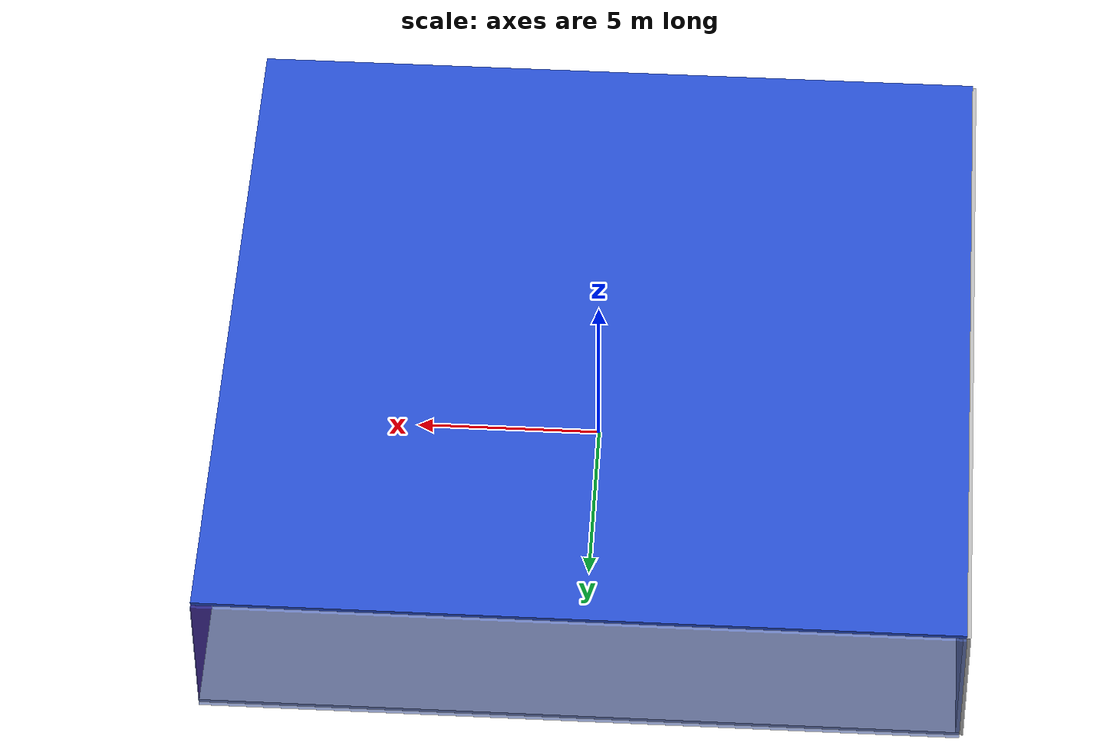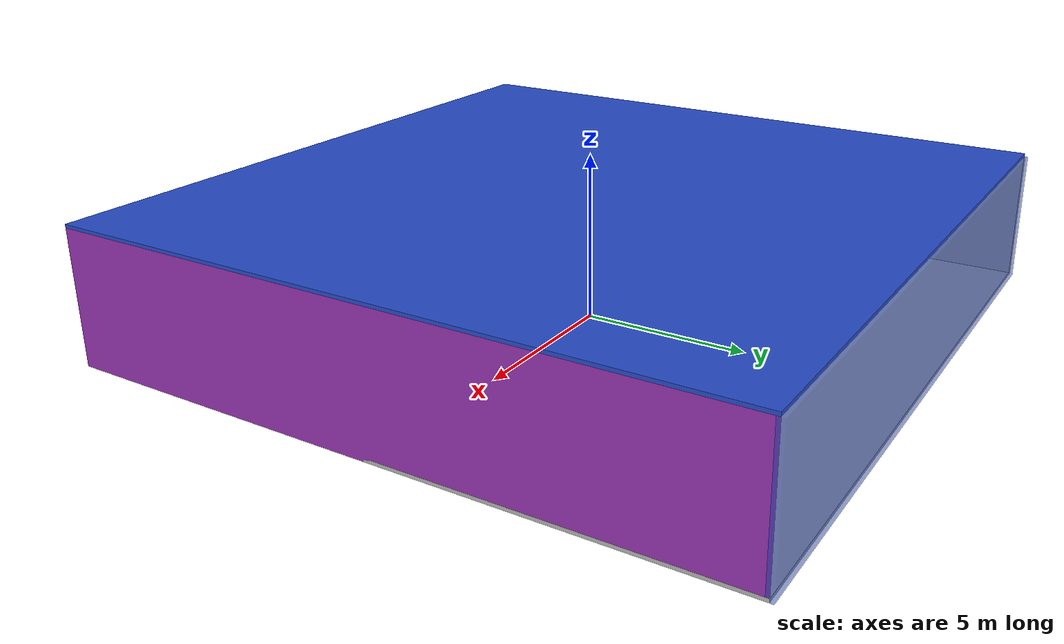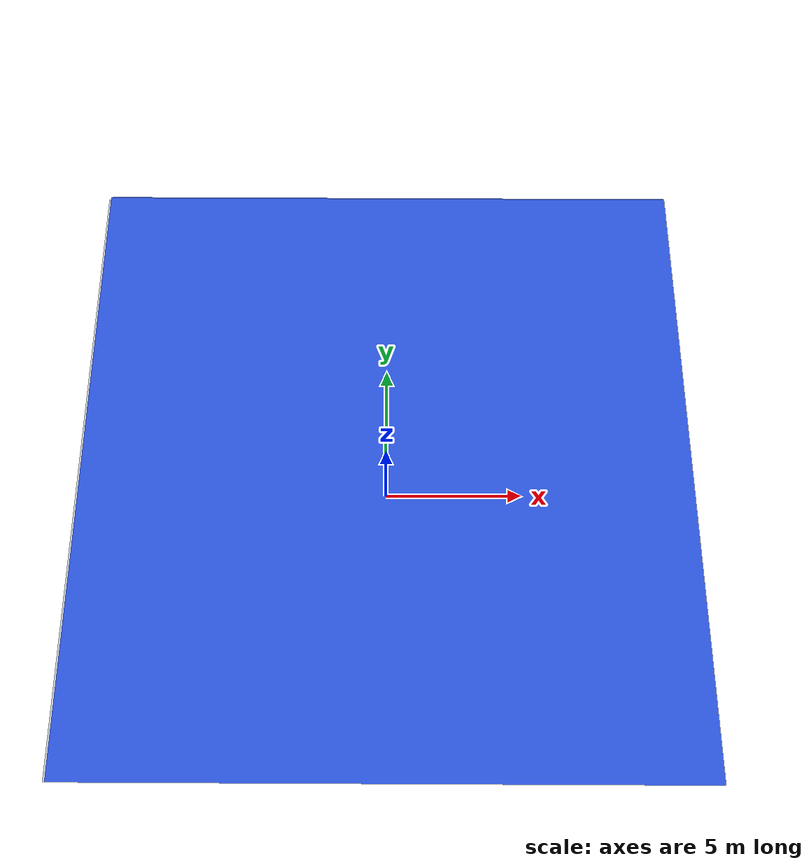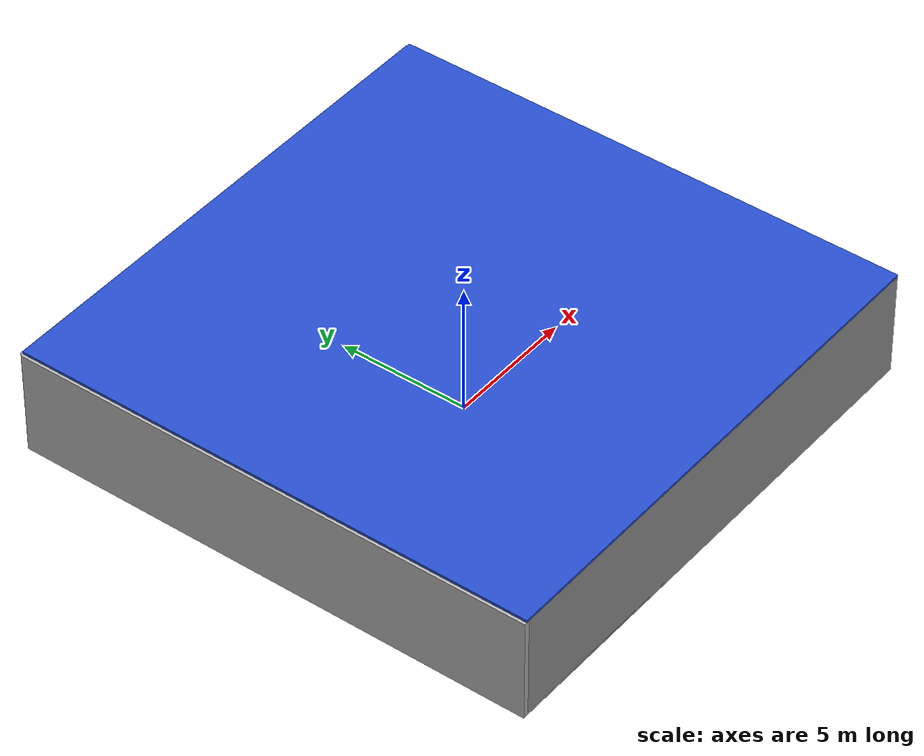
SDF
<sdf version="1.4">
 <world name="default">
  <physics type="ode">
   <max_step_size>0.001</max_step_size>
   <real_time_factor>1</real_time_factor>
   <real_time_update_rate>1000</real_time_update_rate>
   <gravity>0 0 -9.8</gravity>
  </physics>
  <scene><ambient>0.4 0.4 0.4 1</ambient><background>0.7 0.7 0.7 1</background><shadows>1</shadows></scene>
  <model name="Surrounding">
   <static>1</static>
   <link name="Ceiling">
    <collision name="Ceiling_Collision"><geometry><box><size>20 20 0.1</size></box></geometry></collision>
    <visual name="Ceiling_Visual">
     <geometry><box><size>20 20 0.1</size></box></geometry>
     <material>
      <script><uri>file://media/materials/scripts/gazebo.material</uri><name>Gazebo/BlueGlow</name></script>
     </material>
    </visual>
    <pose>0 0 4.05 0 0 0</pose>
   </link>
   <link name="Wall_South">
    <collision name="Wall_South_Collision">
     <geometry><box><size>20 0 4</size></box></geometry>
     <pose>0 0 2 0 -0 0</pose>
    </collision>
    <visual name="Wall_South_Visual">
     <pose>0 0 2 0 -0 0</pose>
     <geometry><box><size>20 0 4</size></box></geometry>
     <material>
      <script><uri>file://media/materials/scripts/gazebo.material</uri><name>Gazebo/GreyGradientSky</name></script>
     </material>
    </visual>
    <velocity_decay><linear>0</linear><angular>0</angular></velocity_decay>
    <pose>0 -10 0 0 -0 0</pose>
   </link>
   <link name="Wall_East">
    <collision name="Wall_21_Collision">
     <geometry><box><size>20 0 4</size></box></geometry>
     <pose>0 0 2 0 -0 0</pose>
    </collision>
    <visual name="Wall_21_Visual">
     <pose>0 0 2 0 -0 0</pose>
     <geometry><box><size>20 0 4</size></box></geometry>
     <material>
      <script><uri>file://media/materials/scripts/gazebo.material</uri><name>Gazebo/PurpleGlow</name></script>
     </material>
    </visual>
    <velocity_decay><linear>0</linear><angular>0</angular></velocity_decay>
    <pose>10 0 0 0 -0 1.5708</pose>
   </link>
   <link name="Wall_North">
    <collision name="Wall_22_Collision">
     <geometry><box><size>20 0.2 4</size></box></geometry>
     <pose>0 0 2 0 -0 0</pose>
    </collision>
    <visual name="Wall_22_Visual">
     <pose>0 0 2 0 -0 0</pose>
     <geometry><box><size>20 0.2 4</size></box></geometry>
     <material>
      <script><uri>file://media/materials/scripts/gazebo.material</uri><name>Gazebo/BlueTransparent</name></script>
     </material>
    </visual>
    <velocity_decay><linear>0</linear><angular>0</angular></velocity_decay>
    <pose>0 10 0 0 -0 0</pose>
   </link>
   <link name="Wall_West">
    <collision name="Wall_23_Collision">
     <geometry><box><size>20 0.2 4</size></box></geometry>
     <pose>0 0 2 0 -0 0</pose>
    </collision>
    <visual name="Wall_23_Visual">
     <pose>0 0 2 0 -0 0</pose>
     <geometry><box><size>20 0.2 4</size></box></geometry>
     <material>
      <script><uri>file://media/materials/scripts/gazebo.material</uri><name>Gazebo/JointAnchor</name></script>
     </material>
    </visual>
    <velocity_decay><linear>0</linear><angular>0</angular></velocity_decay>
    <pose>-10 0 0 0 0 -1.5708</pose>
   </link>
   <link name="Ground_link">
    <collision name="collision">
     <pose>0 0 .05 0 -0 0</pose>
     <geometry><box><size>20 20 0.1</size></box></geometry>
    </collision>
    <visual name="visual">
     <pose>0 0 .05 0 -0 0</pose>
     <geometry><box><size>20 20 0.1</size></box></geometry>
     <material>
      <script><uri>file://media/materials/scripts/gazebo.material</uri><name>Gazebo/LightOn</name></script>
     </material>
    </visual>
   </link>
   <static>1</static>
  </model>
  <spherical_coordinates>
   <surface_model>EARTH_WGS84</surface_model>
   <latitude_deg>0</latitude_deg>
   <longitude_deg>0</longitude_deg>
   <elevation>0</elevation>
   <heading_deg>0</heading_deg>
  </spherical_coordinates>
  <light name="lightball_0" type="diffuse">
   <diffuse>0.8 0.8 0.8 1</diffuse>
   <specular>0.2 0.2 0.2 1</specular>
   <attenuation>
    <range>100</range>
    <constant>0.7</constant>
    <linear>0.01</linear>
    <quadratic>0.001</quadratic>
   </attenuation>
   <direction>-0.5 0.1 -0.9</direction>
   <pose>3.972832992 -9.80142518291 2.38099583227 0 0 0</pose>
  </light>
  <light name="lightball_1" type="diffuse">
   <diffuse>0.8 0.8 0.8 1</diffuse>
   <specular>0.2 0.2 0.2 1</specular>
   <attenuation>
    <range>100</range>
    <constant>0.7</constant>
    <linear>0.01</linear>
    <quadratic>0.001</quadratic>
   </attenuation>
   <direction>-0.5 0.1 -0.9</direction>
   <pose>2.89782874948 -5.61487960719 1.07429410718 0 0 0</pose>
  </light>
  <light name="lightball_2" type="diffuse">
   <diffuse>0.8 0.8 0.8 1</diffuse>
   <specular>0.2 0.2 0.2 1</specular>
   <attenuation>
    <range>100</range>
    <constant>0.7</constant>
    <linear>0.01</linear>
    <quadratic>0.001</quadratic>
   </attenuation>
   <direction>-0.5 0.1 -0.9</direction>
   <pose>3.46605848292 3.32755314023 0.808813211925 0 0 0</pose>
  </light>
  <light name="lightball_3" type="diffuse">
   <diffuse>0.8 0.8 0.8 1</diffuse>
   <specular>0.2 0.2 0.2 1</specular>
   <attenuation>
    <range>100</range>
    <constant>0.7</constant>
    <linear>0.01</linear>
    <quadratic>0.001</quadratic>
   </attenuation>
   <direction>-0.5 0.1 -0.9</direction>
   <pose>0.525896980881 -1.16045745079 2.52229021024 0 0 0</pose>
  </light>
  <include>
   <uri>model://textured_shapes</uri>
   <pose>-7.55821821845 -7.99925097154 0 0 0 2.03008451661</pose>
  </include>
  <include><uri>model://cabinet</uri><pose>-7.72667113953 1.6957425378 0 0 0 1.98856382483</pose></include>
 </world>
</sdf>

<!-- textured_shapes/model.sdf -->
<sdf version="1.6">
  <model name="textured_shapes">
    <pose>0 0 0.5 0 0 0</pose>
    <link name="box">
      <pose>0 -1.5 0 0 0 0</pose>
      <collision name="collision">
        <geometry>
          <box>
            <size>1 1 1</size>
          </box>
        </geometry>
      </collision>
      <visual name="visual">
        <geometry>
          <box>
            <size>1 1 1</size>
          </box>
        </geometry>
        <material>
          <script>
            <uri>model://../model_source/models/textured_shapes/materials/scripts</uri>
            <uri>model://../model_source/models/textured_shapes/materials/textures</uri>
            <name>TexturedShape/Squares</name>
          </script>
        </material>
      </visual>
    </link>
    <link name="sphere">
      <collision name="collision">
        <geometry>
          <sphere>
            <radius>0.5</radius>
          </sphere>
        </geometry>
      </collision>
      <visual name="visual">
        <geometry>
          <sphere>
            <radius>0.5</radius>
          </sphere>
        </geometry>
        <material>
          <script>
            <uri>model://../model_source/models/textured_shapes/materials/scripts</uri>
            <uri>model://../model_source/models/textured_shapes/materials/textures</uri>
            <name>TexturedShape/Squares</name>
          </script>
        </material>
      </visual>
    </link>
    <link name="cylinder">
      <pose>0 1.5 0 0 0 0</pose>
      <collision name="collision">
        <geometry>
          <cylinder>
            <radius>0.5</radius>
            <length>1</length>
          </cylinder>
        </geometry>
      </collision>
      <visual name="visual">
        <geometry>
          <cylinder>
            <radius>0.5</radius>
            <length>1</length>
          </cylinder>
        </geometry>
        <material>
          <script>
            <uri>model://../model_source/models/textured_shapes/materials/scripts</uri>
            <uri>model://../model_source/models/textured_shapes/materials/textures</uri>
            <name>TexturedShape/Squares</name>
          </script>
        </material>
      </visual>
    </link>
  </model>
</sdf>

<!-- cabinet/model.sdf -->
<sdf version="1.5">
  <model name="cabinet">
    <static>true</static>
    <link name="cabinet_bottom_plate">
      <inertial>
        <pose>0 0 -1 0 0 0</pose>
        <inertia>
          <ixx>2.050000</ixx>
          <ixy>0</ixy>
          <ixz>0</ixz>
          <iyy>2.050000</iyy>
          <iyz>0</iyz>
          <izz>2.050000</izz>
        </inertia>
        <mass>25.000000</mass>
      </inertial>
      <collision name="cabinet_bottom_plate_geom">
        <pose>0 0 0.010000 0 0 0</pose>
        <geometry>
          <box>
            <size>0.450000 0.450000 0.020000</size>
          </box>
        </geometry>
      </collision>
      <visual name="cabinet_bottom_plate_geom_visual">
        <pose>0 0 0.010000 0 0 0</pose>
        <geometry>
          <box>
            <size>0.450000 0.450000 0.020000</size>
          </box>
        </geometry>
        <material>
          <script>
            <uri>model://media/materials/scripts/gazebo.material</uri>
            <name>Gazebo/Wood</name>
          </script>
        </material>
      </visual>
      <collision name="cabinet_bottom_plate_geom_cabinet_back_plate">
        <pose>0.235000 0 0.510000 0 0 0</pose>
        <geometry>
          <box>
            <size>0.020000 0.450000 1.020000</size>
          </box>
        </geometry>
      </collision>
      <visual name="cabinet_bottom_plate_geom_cabinet_back_plate_visual">
        <pose>0.235000 0 0.510000 0 0 0</pose>
        <geometry>
          <box>
            <size>0.020000 0.450000 1.020000</size>
          </box>
        </geometry>
        <material>
          <script>
            <uri>model://media/materials/scripts/gazebo.material</uri>
            <name>Gazebo/Wood</name>
          </script>
        </material>
      </visual>
      <collision name="cabinet_bottom_plate_geom_cabinet_left_plate">
        <pose>0 0.235000 0.510000 0 0 0</pose>
        <geometry>
          <box>
            <size>0.450000 0.020000 1.020000</size>
          </box>
        </geometry>
      </collision>
      <visual name="cabinet_bottom_plate_geom_cabinet_left_plate_visual">
        <pose>0 0.235000 0.510000 0 0 0</pose>
        <geometry>
          <box>
            <size>0.450000 0.020000 1.020000</size>
          </box>
        </geometry>
        <material>
          <script>
            <uri>model://media/materials/scripts/gazebo.material</uri>
            <name>Gazebo/Wood</name>
          </script>
        </material>
      </visual>
      <collision name="cabinet_bottom_plate_geom_cabinet_middle_plate">
        <pose>0 0 0.510000 0 0 0</pose>
        <geometry>
          <box>
            <size>0.450000 0.450000 0.020000</size>
          </box>
        </geometry>
      </collision>
      <visual name="cabinet_bottom_plate_geom_cabinet_middle_plate_visual">
        <pose>0 0 0.510000 0 0 0</pose>
        <geometry>
          <box>
            <size>0.450000 0.450000 0.020000</size>
          </box>
        </geometry>
        <material>
          <script>
            <uri>model://media/materials/scripts/gazebo.material</uri>
            <name>Gazebo/Wood</name>
          </script>
        </material>
      </visual>
      <collision name="cabinet_bottom_plate_geom_cabinet_right_plate">
        <pose>0 -0.235000 0.510000 0 0 0</pose>
        <geometry>
          <box>
            <size>0.450000 0.020000 1.020000</size>
          </box>
        </geometry>
      </collision>
      <visual name="cabinet_bottom_plate_geom_cabinet_right_plate_visual">
        <pose>0 -0.235000 0.510000 0 0 0</pose>
        <geometry>
          <box>
            <size>0.450000 0.020000 1.020000</size>
          </box>
        </geometry>
        <material>
          <script>
            <uri>model://media/materials/scripts/gazebo.material</uri>
            <name>Gazebo/Wood</name>
          </script>
        </material>
      </visual>
      <collision name="cabinet_bottom_plate_geom_cabinet_top_plate">
        <pose>0 0 1.010000 0 0 0</pose>
        <geometry>
          <box>
            <size>0.450000 0.450000 0.020000</size>
          </box>
        </geometry>
      </collision>
      <visual name="cabinet_bottom_plate_geom_cabinet_top_plate_visual">
        <pose>0 0 1.010000 0 0 0</pose>
        <geometry>
          <box>
            <size>0.450000 0.450000 0.020000</size>
          </box>
        </geometry>
        <material>
          <script>
            <uri>model://media/materials/scripts/gazebo.material</uri>
            <name>Gazebo/Wood</name>
          </script>
        </material>
      </visual>
    </link>
  </model>
</sdf>
